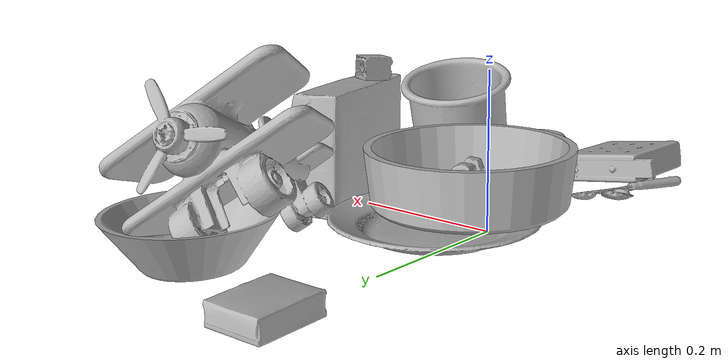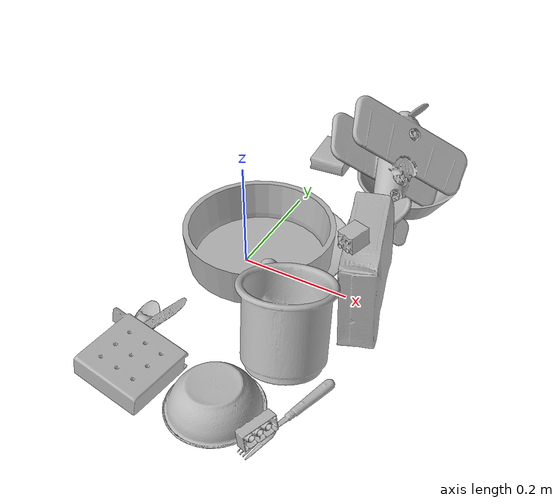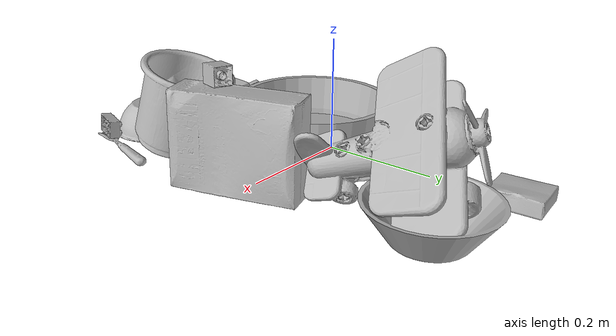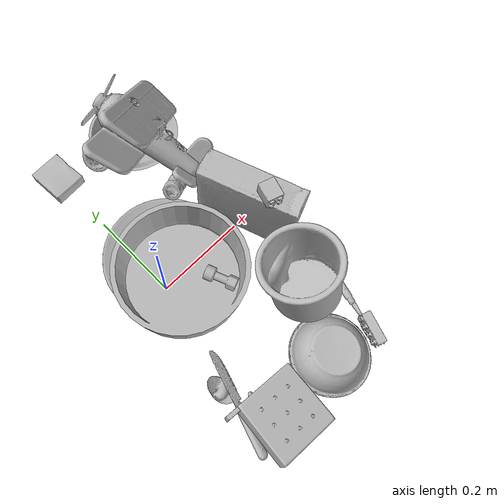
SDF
<sdf version="1.4">
  <world name="default">
    <light name="light1" type="point">
      <pose>0 0 1 0 0 0</pose>
      <diffuse>3 3 3 1</diffuse>
      <specular>3 3 3 1</specular>
    </light>
    <light name="light2" type="point">
      <pose>0 0.5 2 0 0 0</pose>
      <diffuse>1 1 1 1</diffuse>
      <specular>1 1 1 1</specular>
    </light>
    <light name="light3" type="point">
      <pose>0 0.5 2 0 0 0</pose>
      <diffuse>3 3 3 1</diffuse>
      <specular>3 3 3 1</specular>
    </light>
    <scene>
      <ambient>0.7 0.7 0.7</ambient>
    </scene>
    <model name="plate1">
      <link name="link_plate1">
        <collision name="default">
          <geometry>
            <mesh>
              <uri>model://plate/collision_meshes/collision.obj</uri>
              <scale>1.0 1.0 1.0</scale>
            </mesh>
          </geometry>
          <surface>
            <friction>
              <ode>
                <mu>0.5</mu>
                <mu2>0.5</mu2>
              </ode>
            </friction>
          <contact>
        <ode>
            <max_vel>0</max_vel>
            <min_depth>0.0001</min_depth>
            <kp>1e8</kp>
        </ode>
    </contact></surface>
        </collision>
        <visual name="default">
          <geometry>
            <mesh>
              <uri>model://plate/visual_meshes/visual.dae</uri>
              <scale>1.0 1.0 1.0</scale>
            </mesh>
          </geometry>
        </visual>
        <inertial>
          <mass>0.1516857147216797</mass>
          <pose>-0.0006044649053364992 0.00027825761935673654 -0.0010561972158029675 0.002218765199568956 -0.003225488596237322 0.4526153800388047</pose>
          <inertia>
            <ixx>0.00070958876</ixx>
            <iyy>0.0007028018</iyy>
            <izz>0.00138785</izz>
            <ixy>0</ixy>
            <ixz>0</ixz>
            <iyz>0</iyz>
          </inertia>
        </inertial>
      </link>
      <pose>0.044475674629211426 0.047755662351846695 0.013735262677073479 9.604420595844827e-06 -3.1056822792282375e-05 -1.2323295116014004</pose>
    </model>
    <model name="plate2">
      <link name="link_plate2">
        <collision name="default">
          <geometry>
            <mesh>
              <uri>model://pan_tefal/collision_meshes/collision.obj</uri>
              <scale>1.0 1.0 1.0</scale>
            </mesh>
          </geometry>
          <surface>
            <friction>
              <ode>
                <mu>0.5</mu>
                <mu2>0.5</mu2>
              </ode>
            </friction>
          <contact>
        <ode>
            <max_vel>0</max_vel>
            <min_depth>0.0001</min_depth>
            <kp>1e8</kp>
        </ode>
    </contact></surface>
        </collision>
        <visual name="default">
          <geometry>
            <mesh>
              <uri>model://pan_tefal/visual_meshes/visual.dae</uri>
              <scale>1.0 1.0 1.0</scale>
            </mesh>
          </geometry>
        </visual>
        <inertial>
          <mass>1.0862284898757935</mass>
          <pose>-0.00018001910939347 3.2794348953757435e-05 -0.00851493515074253 0.0008190334899032376 -0.0003301482999058744 -0.3318501395419688</pose>
          <inertia>
            <ixx>0.0074981838</ixx>
            <iyy>0.007546525</iyy>
            <izz>0.013802713</izz>
            <ixy>0</ixy>
            <ixz>0</ixz>
            <iyz>0</iyz>
          </inertia>
        </inertial>
      </link>
      <pose>0.036560602486133575 -0.011573976837098598 0.06461246311664581 0.015814677954732844 0.007730390635021962 3.01032567725101</pose>
    </model>
    <model name="bowl1">
      <link name="link_bowl1">
        <collision name="default">
          <geometry>
            <mesh>
              <uri>model://bowl_a/collision_meshes/collision.obj</uri>
              <scale>1.0 1.0 1.0</scale>
            </mesh>
          </geometry>
          <surface>
            <friction>
              <ode>
                <mu>0.5</mu>
                <mu2>0.5</mu2>
              </ode>
            </friction>
          <contact>
        <ode>
            <max_vel>0</max_vel>
            <min_depth>0.0001</min_depth>
            <kp>1e8</kp>
        </ode>
    </contact></surface>
        </collision>
        <visual name="default">
          <geometry>
            <mesh>
              <uri>model://bowl_a/visual_meshes/visual.dae</uri>
              <scale>1.0 1.0 1.0</scale>
            </mesh>
          </geometry>
        </visual>
        <inertial>
          <mass>0.23323877155780792</mass>
          <pose>0.0002786752884276211 4.7312129026977345e-05 -0.001376529224216938 -0.000980538139416196 -0.00109382495954127 -0.19123674059098103</pose>
          <inertia>
            <ixx>0.0006640416</ixx>
            <iyy>0.0006681184</iyy>
            <izz>0.0011810234</izz>
            <ixy>0</ixy>
            <ixz>0</ixz>
            <iyz>0</iyz>
          </inertia>
        </inertial>
      </link>
      <pose>0.18197664618492126 0.2976902425289154 0.030383160337805748 -6.21420026826646e-07 2.097449356520634e-06 2.879492124725599</pose>
    </model>
    <model name="bowl2">
      <link name="link_bowl2">
        <collision name="default">
          <geometry>
            <mesh>
              <uri>model://bowl/collision_meshes/collision.obj</uri>
              <scale>1.0 1.0 1.0</scale>
            </mesh>
          </geometry>
          <surface>
            <friction>
              <ode>
                <mu>0.5</mu>
                <mu2>0.5</mu2>
              </ode>
            </friction>
          <contact>
        <ode>
            <max_vel>0</max_vel>
            <min_depth>0.0001</min_depth>
            <kp>1e8</kp>
        </ode>
    </contact></surface>
        </collision>
        <visual name="default">
          <geometry>
            <mesh>
              <uri>model://bowl/visual_meshes/visual.dae</uri>
              <scale>1.0 1.0 1.0</scale>
            </mesh>
          </geometry>
        </visual>
        <inertial>
          <mass>0.08787161856889725</mass>
          <pose>0.00020445531117729843 -0.0010302038863301277 -0.0008042651461437345 -0.015764035308279474 0.014546860922519275 0.7140443952173783</pose>
          <inertia>
            <ixx>0.00020184812</ixx>
            <iyy>0.00019733804</iyy>
            <izz>0.00033957793</izz>
            <ixy>0</ixy>
            <ixz>0</ixz>
            <iyz>0</iyz>
          </inertia>
        </inertial>
      </link>
      <pose>0.13820795714855194 -0.32055068016052246 0.02725166827440262 -3.132258796627728 0.0007848453276134013 1.243505067125679</pose>
    </model>
    <model name="silverware1">
      <link name="link_silverware1">
        <collision name="default">
          <geometry>
            <mesh>
              <uri>model://spoon/collision_meshes/collision.obj</uri>
              <scale>1.0 1.0 1.0</scale>
            </mesh>
          </geometry>
          <surface>
            <friction>
              <ode>
                <mu>0.5</mu>
                <mu2>0.5</mu2>
              </ode>
            </friction>
          <contact>
        <ode>
            <max_vel>0</max_vel>
            <min_depth>0.0001</min_depth>
            <kp>1e8</kp>
        </ode>
    </contact></surface>
        </collision>
        <visual name="default">
          <geometry>
            <mesh>
              <uri>model://spoon/visual_meshes/visual.dae</uri>
              <scale>1.0 1.0 1.0</scale>
            </mesh>
          </geometry>
        </visual>
        <inertial>
          <mass>0.028818774968385696</mass>
          <pose>-0.0055263228714466095 -0.0016034181462600827 -0.0007271657814271748 0.03521556092832266 -0.039065843026344464 0.006150610888934851</pose>
          <inertia>
            <ixx>1.6029475e-06</ixx>
            <iyy>0.0001096545</iyy>
            <izz>0.000110445</izz>
            <ixy>0</ixy>
            <ixz>0</ixz>
            <iyz>0</iyz>
          </inertia>
        </inertial>
      </link>
      <pose>-0.05042782425880432 -0.2846102714538574 0.009111066348850727 0.10929645647088823 0.0059097143516213075 1.7620088236217968</pose>
    </model>
    <model name="box1">
      <link name="link_box1">
        <collision name="default">
          <geometry>
            <mesh>
              <uri>model://cracker_box/collision_meshes/collision.obj</uri>
              <scale>1.0 1.0 1.0</scale>
            </mesh>
          </geometry>
          <surface>
            <friction>
              <ode>
                <mu>0.5</mu>
                <mu2>0.5</mu2>
              </ode>
            </friction>
          <contact>
        <ode>
            <max_vel>0</max_vel>
            <min_depth>0.0001</min_depth>
            <kp>1e8</kp>
        </ode>
    </contact></surface>
        </collision>
        <visual name="default">
          <geometry>
            <mesh>
              <uri>model://cracker_box/visual_meshes/visual.dae</uri>
              <scale>1.0 1.0 1.0</scale>
            </mesh>
          </geometry>
        </visual>
        <inertial>
          <mass>2.9781224727630615</mass>
          <pose>0.0009464174509048462 0.00025434247800149024 -0.0017029534792527556 -0.0003162077703261406 -0.01110649239447325 0.0025467938390949236</pose>
          <inertia>
            <ixx>0.007575013</ixx>
            <iyy>0.012507835</iyy>
            <izz>0.017849829</izz>
            <ixy>0</ixy>
            <ixz>0</ixz>
            <iyz>0</iyz>
          </inertia>
        </inertial>
      </link>
      <pose>0.23685507476329803 -0.001842475263401866 0.08175770938396454 1.5452464436495386 0.00904127124551829 1.9020472575455762</pose>
    </model>
    <model name="box2">
      <link name="link_box2">
        <collision name="default">
          <geometry>
            <mesh>
              <uri>model://gelatin_box/collision_meshes/collision.obj</uri>
              <scale>1.0 1.0 1.0</scale>
            </mesh>
          </geometry>
          <surface>
            <friction>
              <ode>
                <mu>0.5</mu>
                <mu2>0.5</mu2>
              </ode>
            </friction>
          <contact>
        <ode>
            <max_vel>0</max_vel>
            <min_depth>0.0001</min_depth>
            <kp>1e8</kp>
        </ode>
    </contact></surface>
        </collision>
        <visual name="default">
          <geometry>
            <mesh>
              <uri>model://gelatin_box/visual_meshes/visual.dae</uri>
              <scale>1.0 1.0 1.0</scale>
            </mesh>
          </geometry>
        </visual>
        <inertial>
          <mass>0.16266882419586182</mass>
          <pose>0.0004319618456065655 0.00011156871914863586 -0.0003640321083366871 -0.0010503720968416132 -0.004755819155016646 0.016440559472150423</pose>
          <inertia>
            <ixx>0.00011483092</ixx>
            <iyy>8.202313e-05</iyy>
            <izz>0.00017479825</izz>
            <ixy>0</ixy>
            <ixz>0</ixz>
            <iyz>0</iyz>
          </inertia>
        </inertial>
      </link>
      <pose>-0.0012334431521594524 0.34930551052093506 0.015168312937021255 0.0055974718670781486 -0.00730457035687557 0.05660280803721833</pose>
    </model>
    <model name="cup1">
      <link name="link_cup1">
        <collision name="default">
          <geometry>
            <mesh>
              <uri>model://f_cups/collision_meshes/collision.obj</uri>
              <scale>2.0 2.0 2.0</scale>
            </mesh>
          </geometry>
          <surface>
            <friction>
              <ode>
                <mu>0.5</mu>
                <mu2>0.5</mu2>
              </ode>
            </friction>
          <contact>
        <ode>
            <max_vel>0</max_vel>
            <min_depth>0.0001</min_depth>
            <kp>1e8</kp>
        </ode>
    </contact></surface>
        </collision>
        <visual name="default">
          <geometry>
            <mesh>
              <uri>model://f_cups/visual_meshes/visual.dae</uri>
              <scale>2.0 2.0 2.0</scale>
            </mesh>
          </geometry>
        </visual>
        <inertial>
          <mass>0.6683602333068848</mass>
          <pose>-0.006342936307191849 -0.0012480152072384953 -0.0073110745288431644 0.7862253042657107 -0.260793604503958 -0.18237387444081576</pose>
          <inertia>
            <ixx>0.0025131067</ixx>
            <iyy>0.0026362767</iyy>
            <izz>0.0027444381</izz>
            <ixy>0</ixy>
            <ixz>0</ixz>
            <iyz>0</iyz>
          </inertia>
        </inertial>
      </link>
      <pose>0.18761199712753296 -0.18775705993175507 0.08730212599039078 -0.013065765679925968 -0.29874250922851187 -1.1915205624680132</pose>
    </model>
    <model name="silverware2">
      <link name="link_silverware2">
        <collision name="default">
          <geometry>
            <mesh>
              <uri>model://knife/collision_meshes/collision.obj</uri>
              <scale>1.0 1.0 1.0</scale>
            </mesh>
          </geometry>
          <surface>
            <friction>
              <ode>
                <mu>0.5</mu>
                <mu2>0.5</mu2>
              </ode>
            </friction>
          <contact>
        <ode>
            <max_vel>0</max_vel>
            <min_depth>0.0001</min_depth>
            <kp>1e8</kp>
        </ode>
    </contact></surface>
        </collision>
        <visual name="default">
          <geometry>
            <mesh>
              <uri>model://knife/visual_meshes/visual.dae</uri>
              <scale>1.0 1.0 1.0</scale>
            </mesh>
          </geometry>
        </visual>
        <inertial>
          <mass>0.03087119571864605</mass>
          <pose>-0.023785250261425972 0.0015275123296305537 5.062009586254135e-05 0.07305987484925712 0.017248420899959087 -0.007409824084002247</pose>
          <inertia>
            <ixx>8.762499e-07</ixx>
            <iyy>0.000118602155</iyy>
            <izz>0.00011888435</izz>
            <ixy>0</ixy>
            <ixz>0</ixz>
            <iyz>0</iyz>
          </inertia>
        </inertial>
      </link>
      <pose>-0.0552276112139225 -0.2576867938041687 0.011670039035379887 0.3973663567275183 -0.04936216938994454 1.2607339115182565</pose>
    </model>
    <model name="silverware3">
      <link name="link_silverware3">
        <collision name="default">
          <geometry>
            <mesh>
              <uri>model://fork/collision_meshes/collision.obj</uri>
              <scale>1.0 1.0 1.0</scale>
            </mesh>
          </geometry>
          <surface>
            <friction>
              <ode>
                <mu>0.5</mu>
                <mu2>0.5</mu2>
              </ode>
            </friction>
          <contact>
        <ode>
            <max_vel>0</max_vel>
            <min_depth>0.0001</min_depth>
            <kp>1e8</kp>
        </ode>
    </contact></surface>
        </collision>
        <visual name="default">
          <geometry>
            <mesh>
              <uri>model://fork/visual_meshes/visual.dae</uri>
              <scale>1.0 1.0 1.0</scale>
            </mesh>
          </geometry>
        </visual>
        <inertial>
          <mass>0.015284496359527111</mass>
          <pose>-0.02957003004848957 0.00046588233090005815 0.00032188600744120777 -0.013550803329795006 -0.010977829430356707 0.014453895799763906</pose>
          <inertia>
            <ixx>5.358081e-07</ixx>
            <iyy>3.9903432e-05</iyy>
            <izz>4.0143095e-05</izz>
            <ixy>0</ixy>
            <ixz>0</ixz>
            <iyz>0</iyz>
          </inertia>
        </inertial>
      </link>
      <pose>0.24893182516098022 -0.2857045531272888 0.007452888879925013 -3.062184430029895 0.002793529196012791 -1.8423641383257543</pose>
    </model>
    <model name="toy1">
      <link name="link_toy1">
        <collision name="default">
          <geometry>
            <mesh>
              <uri>model://c_toy_airplane/collision_meshes/collision.obj</uri>
              <scale>1.0 1.0 1.0</scale>
            </mesh>
          </geometry>
          <surface>
            <friction>
              <ode>
                <mu>0.5</mu>
                <mu2>0.5</mu2>
              </ode>
            </friction>
          <contact>
        <ode>
            <max_vel>0</max_vel>
            <min_depth>0.0001</min_depth>
            <kp>1e8</kp>
        </ode>
    </contact></surface>
        </collision>
        <visual name="default">
          <geometry>
            <mesh>
              <uri>model://c_toy_airplane/visual_meshes/visual.dae</uri>
              <scale>1.0 1.0 1.0</scale>
            </mesh>
          </geometry>
        </visual>
        <inertial>
          <mass>0.014899278059601784</mass>
          <pose>-0.0002302424400113523 -4.428088118402229e-07 -0.006080529186874628 -0.00619304524108313 -0.016797611161866028 0.7655100812139064</pose>
          <inertia>
            <ixx>6.841441e-06</ixx>
            <iyy>6.822133e-06</iyy>
            <izz>1.6062353e-06</izz>
            <ixy>0</ixy>
            <ixz>0</ixz>
            <iyz>0</iyz>
          </inertia>
        </inertial>
      </link>
      <pose>0.08466900140047073 -0.07176700234413147 0.04973500594496727 -1.5944787157033835 0.4259924348200426 -2.7861319666495006</pose>
    </model>
    <model name="toy2">
      <link name="link_toy2">
        <collision name="default">
          <geometry>
            <mesh>
              <uri>model://nine_hole_peg_test/collision_meshes/collision.obj</uri>
              <scale>1.0 1.0 1.0</scale>
            </mesh>
          </geometry>
          <surface>
            <friction>
              <ode>
                <mu>0.5</mu>
                <mu2>0.5</mu2>
              </ode>
            </friction>
          <contact>
        <ode>
            <max_vel>0</max_vel>
            <min_depth>0.0001</min_depth>
            <kp>1e8</kp>
        </ode>
    </contact></surface>
        </collision>
        <visual name="default">
          <geometry>
            <mesh>
              <uri>model://nine_hole_peg_test/visual_meshes/visual.dae</uri>
              <scale>1.0 1.0 1.0</scale>
            </mesh>
          </geometry>
        </visual>
        <inertial>
          <mass>0.8674170970916748</mass>
          <pose>-0.004617386031895876 -0.009647614322602749 2.6460689696250483e-05 -0.0014666783129250742 0.0007194188660534222 -0.6342410037611789</pose>
          <inertia>
            <ixx>0.0013563493</ixx>
            <iyy>0.0012664091</iyy>
            <izz>0.0023767245</izz>
            <ixy>0</ixy>
            <ixz>0</ixz>
            <iyz>0</iyz>
          </inertia>
        </inertial>
      </link>
      <pose>-0.019469745457172394 -0.3233200013637543 0.03269258514046669 0.1599115192388651 0.019555874997981542 1.4746887314109949</pose>
    </model>
    <model name="toy3">
      <link name="link_toy3">
        <collision name="default">
          <geometry>
            <mesh>
              <uri>model://a_toy_airplane/collision_meshes/collision.obj</uri>
              <scale>1.0 1.0 1.0</scale>
            </mesh>
          </geometry>
          <surface>
            <friction>
              <ode>
                <mu>0.5</mu>
                <mu2>0.5</mu2>
              </ode>
            </friction>
          <contact>
        <ode>
            <max_vel>0</max_vel>
            <min_depth>0.0001</min_depth>
            <kp>1e8</kp>
        </ode>
    </contact></surface>
        </collision>
        <visual name="default">
          <geometry>
            <mesh>
              <uri>model://a_toy_airplane/visual_meshes/visual.dae</uri>
              <scale>1.0 1.0 1.0</scale>
            </mesh>
          </geometry>
        </visual>
        <inertial>
          <mass>1.0043106079101562</mass>
          <pose>0.02516508847475052 -0.003707321360707283 -0.0011962434509769082 -0.01201694293172648 -0.14663499629613377 0.0041490900747424425</pose>
          <inertia>
            <ixx>0.0036471337</ixx>
            <iyy>0.0053146123</iyy>
            <izz>0.0062227584</izz>
            <ixy>0</ixy>
            <ixz>0</ixz>
            <iyz>0</iyz>
          </inertia>
        </inertial>
      </link>
      <pose>0.17369304597377777 0.22684650123119354 0.11170390248298645 0.6137400679112863 -0.21674127593644726 1.9496762167741652</pose>
    </model>
    <model name="toy4">
      <link name="link_toy4">
        <collision name="default">
          <geometry>
            <mesh>
              <uri>model://c_lego_duplo/collision_meshes/collision.obj</uri>
              <scale>1.0 1.0 1.0</scale>
            </mesh>
          </geometry>
          <surface>
            <friction>
              <ode>
                <mu>0.5</mu>
                <mu2>0.5</mu2>
              </ode>
            </friction>
          <contact>
        <ode>
            <max_vel>0</max_vel>
            <min_depth>0.0001</min_depth>
            <kp>1e8</kp>
        </ode>
    </contact></surface>
        </collision>
        <visual name="default">
          <geometry>
            <mesh>
              <uri>model://c_lego_duplo/visual_meshes/visual.dae</uri>
              <scale>1.0 1.0 1.0</scale>
            </mesh>
          </geometry>
        </visual>
        <inertial>
          <mass>0.019874408841133118</mass>
          <pose>0.0003164595691487193 0.0001946465636137873 0.0010453156428411603 -0.01152079101413275 0.005900072799474436 0.031100350485514378</pose>
          <inertia>
            <ixx>7.648045e-06</ixx>
            <iyy>2.443061e-06</iyy>
            <izz>8.937529e-06</izz>
            <ixy>0</ixy>
            <ixz>0</ixz>
            <iyz>0</iyz>
          </inertia>
        </inertial>
      </link>
      <pose>0.22650401294231415 -0.34398216009140015 0.02501976117491722 2.583216372047093 -1.4475274282534407 -2.939578692490289</pose>
    </model>
    <model name="toy5">
      <link name="link_toy5">
        <collision name="default">
          <geometry>
            <mesh>
              <uri>model://b_lego_duplo/collision_meshes/collision.obj</uri>
              <scale>1.0 1.0 1.0</scale>
            </mesh>
          </geometry>
          <surface>
            <friction>
              <ode>
                <mu>0.5</mu>
                <mu2>0.5</mu2>
              </ode>
            </friction>
          <contact>
        <ode>
            <max_vel>0</max_vel>
            <min_depth>0.0001</min_depth>
            <kp>1e8</kp>
        </ode>
    </contact></surface>
        </collision>
        <visual name="default">
          <geometry>
            <mesh>
              <uri>model://b_lego_duplo/visual_meshes/visual.dae</uri>
              <scale>1.0 1.0 1.0</scale>
            </mesh>
          </geometry>
        </visual>
        <inertial>
          <mass>0.031542204320430756</mass>
          <pose>-0.0001105302435462363 -9.152341590379365e-06 0.001929428894072771 -0.03749493031375769 -0.026354084635952003 0.4518990108557965</pose>
          <inertia>
            <ixx>6.4553496e-06</ixx>
            <iyy>6.4987444e-06</iyy>
            <izz>5.7515063e-06</izz>
            <ixy>0</ixy>
            <ixz>0</ixz>
            <iyz>0</iyz>
          </inertia>
        </inertial>
      </link>
      <pose>0.23057569563388824 -0.04803187772631645 0.17982511222362518 -1.6159504224017855 0.035786636823293985 2.8239497672859715</pose>
    </model>
  <physics type="ode">
      <max_contacts>50</max_contacts>
      <ode>
        <solver>
          <type>quick</type>
          <iters>75</iters>
        </solver>
        <constraints>
          <contact_max_correcting_vel>0</contact_max_correcting_vel>
          <contact_surface_layer>0</contact_surface_layer>
        </constraints>
      </ode>
    </physics></world>
</sdf>
